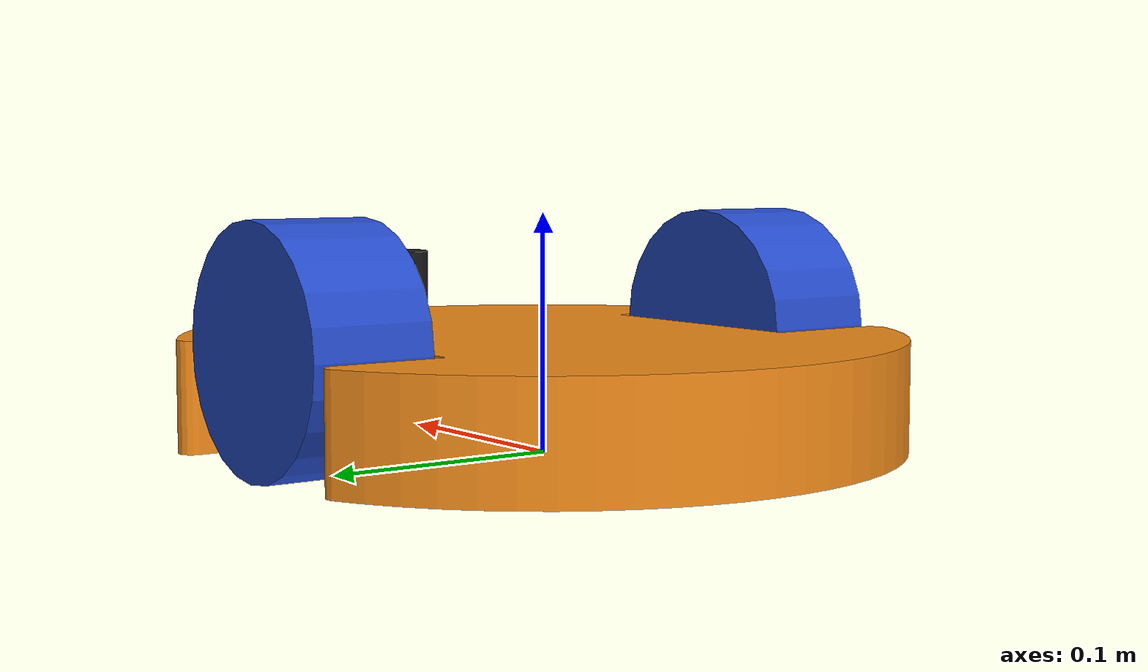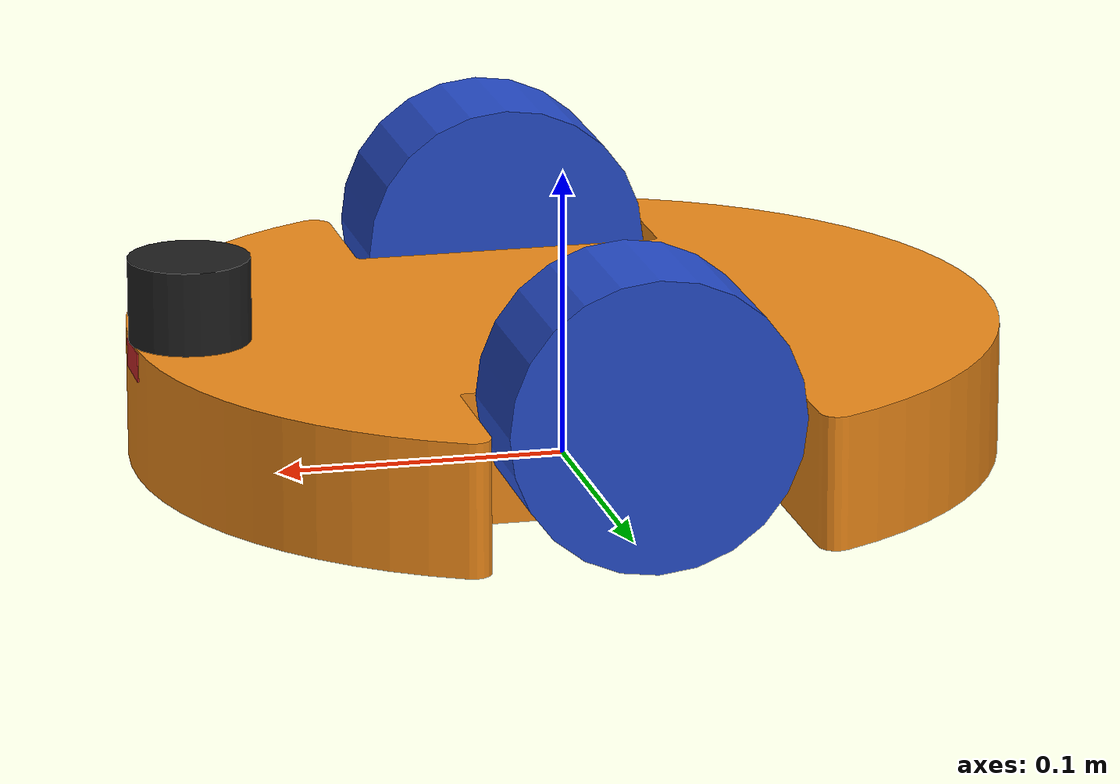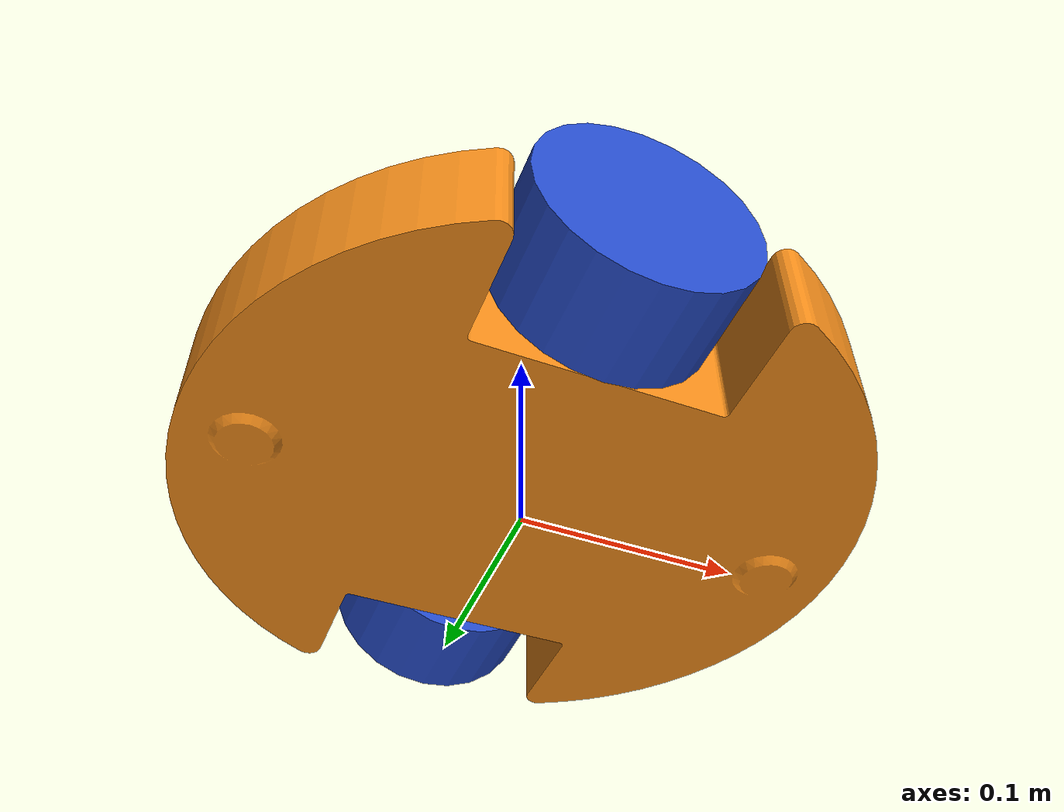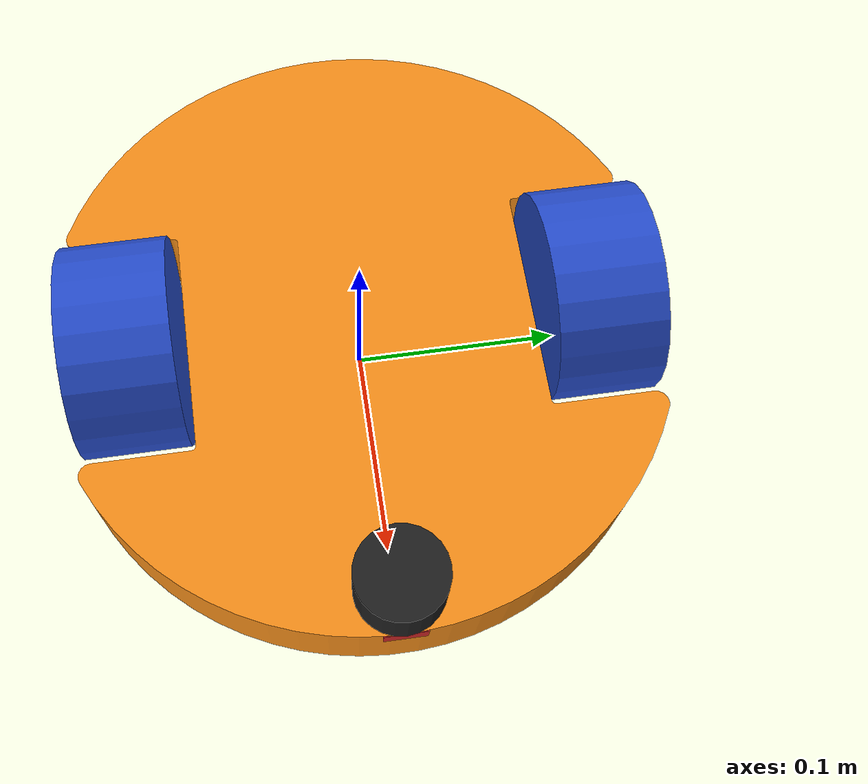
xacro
<?xml version="1.0"?>
<robot xmlns:xacro="http://www.ros.org/wiki/xacro" name="rrcar">

	<xacro:property name="wheel_radius" value="0.05" />
	<xacro:property name="wheel_width" value="0.05" />
	<xacro:property name="wheel_mass" value="0.3" />
	<xacro:property name="body_height" value="0.046" />
	<xacro:property name="body_mass" value="8" />
	<xacro:property name="track_width" value="0.22" />
	<xacro:property name="vehicle_height" value="0.004" />

	<xacro:macro name="wheel_visual">
		<visual>
			<origin xyz="0 0 0" rpy="${M_PI / 2} 0 0" />
			<geometry>
				<cylinder radius="${wheel_radius}" length="${wheel_width}" />
			</geometry>
			<xacro:material_blue />
		</visual>
	</xacro:macro>

	<xacro:macro name="wheel_collision">
		<collision>
			<origin xyz="0 0 0" rpy="${M_PI / 2} 0 0" />
			<geometry>
				<cylinder radius="${wheel_radius}" length="${wheel_width}" />
			</geometry>
		</collision>
	</xacro:macro>

	<xacro:macro name="wheel_transmission" params="name">
		<transmission name="${name}_transmission" type="SimpleTransmission">
			<type>transmission_interface/SimpleTransmission</type>
			<joint name="${name}_joint">
				<hardwareInterface>VelocityJointInterface</hardwareInterface>
			</joint>
			<actuator name="${name}_motor">
				<hardwareInterface>VelocityJointInterface</hardwareInterface>
				<mechanicalReduction>1</mechanicalReduction>
			</actuator>
		</transmission>
	</xacro:macro>

	<link name="base_footprint" />

	<joint name="footprint_to_base" type="fixed">
		<parent link="base_footprint" />
		<child link="base_link" />
		<origin xyz="0 0 ${vehicle_height}" rpy="0 0 0" />
	</joint>

	<link name="base_link">
		<visual>
			<origin xyz="0 0 0" rpy="${M_PI / 2} 0 ${M_PI / 2}" />
			<geometry>
				<mesh filename="package://rrcar_description/meshes/base_link.stl" />
			</geometry>
			<xacro:material_orange />
		</visual>
		<collision>
			<origin xyz="0 0 0" rpy="${M_PI / 2} 0 ${M_PI / 2}" />
			<geometry>
				<mesh filename="package://rrcar_description/meshes/base_link.stl" />
			</geometry>
			<xacro:material_orange />
		</collision>
		<xacro:default_inertial mass="${body_mass}" origin_xyz="0 0 0" />
	</link>

	<joint name="wheel_left_joint" type="continuous">
		<parent link="base_link" />
		<child link="wheel_left" />
		<origin xyz="0 ${track_width / 2} ${wheel_radius - vehicle_height}" rpy="0 0 0" />
		<axis xyz="0 1 0" />
		<limit effort="2" velocity="10.0" />
		<dynamics damping="0.3" friction="0.2" />
	</joint>
	<xacro:wheel_transmission name="wheel_left" />

	<link name="wheel_left">
		<xacro:wheel_visual />
		<xacro:wheel_collision />
		<xacro:default_inertial mass="${wheel_mass}" origin_xyz="0 0 0" />
	</link>

	<joint name="wheel_right_joint" type="continuous">
		<parent link="base_link" />
		<child link="wheel_right" />
		<origin xyz="0 -${track_width / 2} ${wheel_radius - vehicle_height}" rpy="0 0 0" />
		<axis xyz="0 1 0" />
		<limit effort="2" velocity="10.0" />
		<dynamics damping="0.3" friction="0.2" />
	</joint>
	<xacro:wheel_transmission name="wheel_right" />

	<link name="wheel_right">
		<xacro:wheel_visual />
		<xacro:wheel_collision />
		<xacro:default_inertial mass="${wheel_mass}" origin_xyz="0 0 0" />
	</link>

	<!-- Sensors -->
	<joint name="camera_joint" type="fixed">
		<axis xyz="0 1 0" />
		<origin xyz="0.14 0 0.04" rpy="0 0 0"/>
		<parent link="base_link"/>
		<child link="camera_link"/>
	</joint>

	<link name="camera_link">
		<collision>
			<origin xyz="0 0 0" rpy="0 0 0"/>
			<geometry>
				<box size="0.02 0.02 0.01"/>
			</geometry>
		</collision>
		<visual>
			<origin xyz="0 0 0" rpy="0 0 0"/>
			<geometry>
				<box size="0.02 0.02 0.01"/>
			</geometry>
			<xacro:material_red />
		</visual>
		<inertial>
			<mass value="1e-4" />
			<origin xyz="0 0 0" rpy="0 0 0"/>
			<inertia ixx="1e-5" ixy="0" ixz="0" iyy="1e-5" iyz="0" izz="1e-5" />
		</inertial>
	</link>

	<joint name="hokuyo_joint" type="fixed">
		<axis xyz="0 0 1" />
		<origin xyz="0.13 0 ${body_height}" rpy="0 0 0"/>
		<parent link="base_link"/>
		<child link="hokuyo_link"/>
	</joint>

	<link name="hokuyo_link">
		<collision>
			<origin xyz="0 0 ${0.029 / 2}" rpy="0 0 0"/>
			<geometry>
				<cylinder radius="0.021" length="0.029"/>
			</geometry>
		</collision>
		<visual>
			<origin xyz="0 0 ${0.029 / 2}" rpy="0 0 0"/>
			<geometry>
				<cylinder radius="0.021" length="0.029"/>
			</geometry>
			<xacro:material_black />
		</visual>
		<inertial>
			<mass value="0.16" />
			<origin xyz="0 0 0" rpy="0 0 0"/>
			<inertia ixx="0.016" ixy="0" ixz="0" iyy="0.016" iyz="0" izz="0.016" />
		</inertial>
	</link>

	<joint name="imu_joint" type="fixed">
		<axis xyz="0 0 1" />
		<origin xyz="0 0 0" rpy="0 0 0" />
		<parent link="base_link" />
		<child link="imu_link" />
	</joint>

	<link name="imu_link" />

  <xacro:include filename="$(find rrcar_description)/urdf/rrcar.gazebo" />

</robot>
